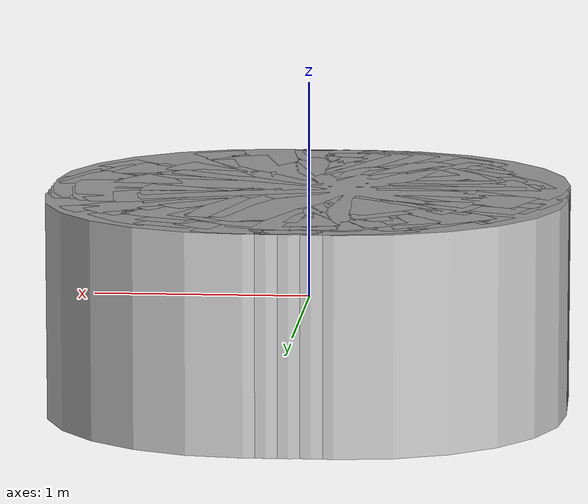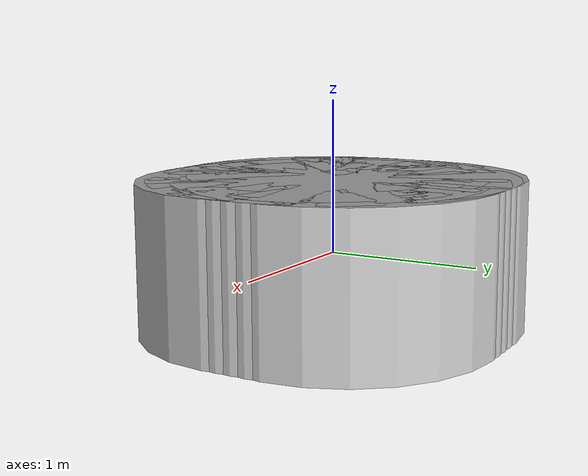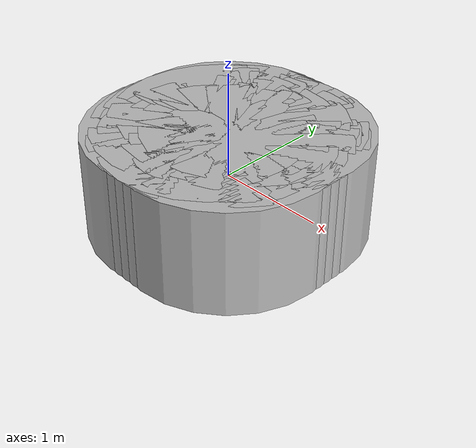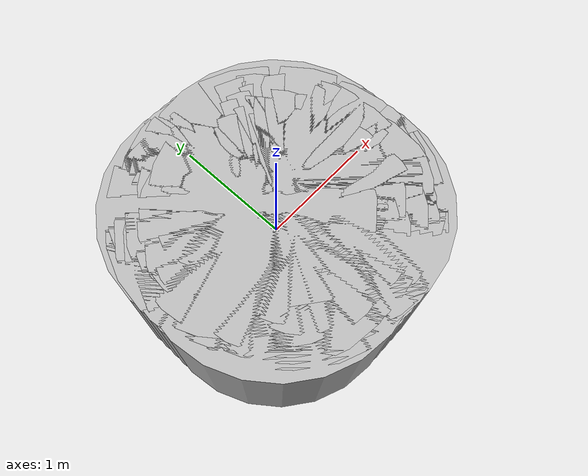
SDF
<sdf version="1.7">
  <model name="mass_mesh_tree">
    <static>false</static>
    <link name="mass_x-2_y-2">
      <pose>-0.2 -0.2 0 0 0 0</pose>
      <inertial>
        <mass>0.004</mass>
        <inertia>
          <ixx>1e-5</ixx>
          <ixy>0</ixy>
          <ixz>0</ixz>
          <iyy>1e-5</iyy>
          <iyz>0</iyz>
          <izz>1e-5</izz>
        </inertia>
      </inertial>
      <collision name="collision_x-2_y-2">
        <geometry>
          <sphere>
            <radius>0.001</radius>
          </sphere>
        </geometry>
      </collision>
      <visual name="visual_x-2_y-2">
        <geometry>
          <cylinder>
            <size>0.015 0.015</size>
          </cylinder>
        </geometry>
      </visual>
    </link>
    <link name="mass_x-1_y-2">
      <pose>-0.1 -0.2 0 0 0 0</pose>
      <inertial>
        <mass>0.004</mass>
        <inertia>
          <ixx>1e-5</ixx>
          <ixy>0</ixy>
          <ixz>0</ixz>
          <iyy>1e-5</iyy>
          <iyz>0</iyz>
          <izz>1e-5</izz>
        </inertia>
      </inertial>
      <collision name="collision_x-1_y-2">
        <geometry>
          <sphere>
            <radius>0.001</radius>
          </sphere>
        </geometry>
      </collision>
      <visual name="visual_x-1_y-2">
        <geometry>
          <cylinder>
            <size>0.015 0.015</size>
          </cylinder>
        </geometry>
      </visual>
    </link>
    <link name="mass_x0_y-2">
      <pose>0.0 -0.2 0 0 0 0</pose>
      <inertial>
        <mass>0.004</mass>
        <inertia>
          <ixx>1e-5</ixx>
          <ixy>0</ixy>
          <ixz>0</ixz>
          <iyy>1e-5</iyy>
          <iyz>0</iyz>
          <izz>1e-5</izz>
        </inertia>
      </inertial>
      <collision name="collision_x0_y-2">
        <geometry>
          <sphere>
            <radius>0.001</radius>
          </sphere>
        </geometry>
      </collision>
      <visual name="visual_x0_y-2">
        <geometry>
          <cylinder>
            <size>0.015 0.015</size>
          </cylinder>
        </geometry>
      </visual>
    </link>
    <link name="mass_x1_y-2">
      <pose>0.1 -0.2 0 0 0 0</pose>
      <inertial>
        <mass>0.004</mass>
        <inertia>
          <ixx>1e-5</ixx>
          <ixy>0</ixy>
          <ixz>0</ixz>
          <iyy>1e-5</iyy>
          <iyz>0</iyz>
          <izz>1e-5</izz>
        </inertia>
      </inertial>
      <collision name="collision_x1_y-2">
        <geometry>
          <sphere>
            <radius>0.001</radius>
          </sphere>
        </geometry>
      </collision>
      <visual name="visual_x1_y-2">
        <geometry>
          <cylinder>
            <size>0.015 0.015</size>
          </cylinder>
        </geometry>
      </visual>
    </link>
    <link name="mass_x2_y-2">
      <pose>0.2 -0.2 0 0 0 0</pose>
      <inertial>
        <mass>0.004</mass>
        <inertia>
          <ixx>1e-5</ixx>
          <ixy>0</ixy>
          <ixz>0</ixz>
          <iyy>1e-5</iyy>
          <iyz>0</iyz>
          <izz>1e-5</izz>
        </inertia>
      </inertial>
      <collision name="collision_x2_y-2">
        <geometry>
          <sphere>
            <radius>0.001</radius>
          </sphere>
        </geometry>
      </collision>
      <visual name="visual_x2_y-2">
        <geometry>
          <cylinder>
            <size>0.015 0.015</size>
          </cylinder>
        </geometry>
      </visual>
    </link>
    <link name="mass_x-2_y-1">
      <pose>-0.2 -0.1 0 0 0 0</pose>
      <inertial>
        <mass>0.004</mass>
        <inertia>
          <ixx>1e-5</ixx>
          <ixy>0</ixy>
          <ixz>0</ixz>
          <iyy>1e-5</iyy>
          <iyz>0</iyz>
          <izz>1e-5</izz>
        </inertia>
      </inertial>
      <collision name="collision_x-2_y-1">
        <geometry>
          <sphere>
            <radius>0.001</radius>
          </sphere>
        </geometry>
      </collision>
      <visual name="visual_x-2_y-1">
        <geometry>
          <cylinder>
            <size>0.015 0.015</size>
          </cylinder>
        </geometry>
      </visual>
    </link>
    <link name="mass_x-1_y-1">
      <pose>-0.1 -0.1 0 0 0 0</pose>
      <inertial>
        <mass>0.004</mass>
        <inertia>
          <ixx>1e-5</ixx>
          <ixy>0</ixy>
          <ixz>0</ixz>
          <iyy>1e-5</iyy>
          <iyz>0</iyz>
          <izz>1e-5</izz>
        </inertia>
      </inertial>
      <collision name="collision_x-1_y-1">
        <geometry>
          <sphere>
            <radius>0.001</radius>
          </sphere>
        </geometry>
      </collision>
      <visual name="visual_x-1_y-1">
        <geometry>
          <cylinder>
            <size>0.015 0.015</size>
          </cylinder>
        </geometry>
      </visual>
    </link>
    <link name="mass_x0_y-1">
      <pose>0.0 -0.1 0 0 0 0</pose>
      <inertial>
        <mass>0.004</mass>
        <inertia>
          <ixx>1e-5</ixx>
          <ixy>0</ixy>
          <ixz>0</ixz>
          <iyy>1e-5</iyy>
          <iyz>0</iyz>
          <izz>1e-5</izz>
        </inertia>
      </inertial>
      <collision name="collision_x0_y-1">
        <geometry>
          <sphere>
            <radius>0.001</radius>
          </sphere>
        </geometry>
      </collision>
      <visual name="visual_x0_y-1">
        <geometry>
          <cylinder>
            <size>0.015 0.015</size>
          </cylinder>
        </geometry>
      </visual>
    </link>
    <link name="mass_x1_y-1">
      <pose>0.1 -0.1 0 0 0 0</pose>
      <inertial>
        <mass>0.004</mass>
        <inertia>
          <ixx>1e-5</ixx>
          <ixy>0</ixy>
          <ixz>0</ixz>
          <iyy>1e-5</iyy>
          <iyz>0</iyz>
          <izz>1e-5</izz>
        </inertia>
      </inertial>
      <collision name="collision_x1_y-1">
        <geometry>
          <sphere>
            <radius>0.001</radius>
          </sphere>
        </geometry>
      </collision>
      <visual name="visual_x1_y-1">
        <geometry>
          <cylinder>
            <size>0.015 0.015</size>
          </cylinder>
        </geometry>
      </visual>
    </link>
    <link name="mass_x2_y-1">
      <pose>0.2 -0.1 0 0 0 0</pose>
      <inertial>
        <mass>0.004</mass>
        <inertia>
          <ixx>1e-5</ixx>
          <ixy>0</ixy>
          <ixz>0</ixz>
          <iyy>1e-5</iyy>
          <iyz>0</iyz>
          <izz>1e-5</izz>
        </inertia>
      </inertial>
      <collision name="collision_x2_y-1">
        <geometry>
          <sphere>
            <radius>0.001</radius>
          </sphere>
        </geometry>
      </collision>
      <visual name="visual_x2_y-1">
        <geometry>
          <cylinder>
            <size>0.015 0.015</size>
          </cylinder>
        </geometry>
      </visual>
    </link>
    <link name="mass_x-2_y0">
      <pose>-0.2 0.0 0 0 0 0</pose>
      <inertial>
        <mass>0.004</mass>
        <inertia>
          <ixx>1e-5</ixx>
          <ixy>0</ixy>
          <ixz>0</ixz>
          <iyy>1e-5</iyy>
          <iyz>0</iyz>
          <izz>1e-5</izz>
        </inertia>
      </inertial>
      <collision name="collision_x-2_y0">
        <geometry>
          <sphere>
            <radius>0.001</radius>
          </sphere>
        </geometry>
      </collision>
      <visual name="visual_x-2_y0">
        <geometry>
          <cylinder>
            <size>0.015 0.015</size>
          </cylinder>
        </geometry>
      </visual>
    </link>
    <link name="mass_x-1_y0">
      <pose>-0.1 0.0 0 0 0 0</pose>
      <inertial>
        <mass>0.004</mass>
        <inertia>
          <ixx>1e-5</ixx>
          <ixy>0</ixy>
          <ixz>0</ixz>
          <iyy>1e-5</iyy>
          <iyz>0</iyz>
          <izz>1e-5</izz>
        </inertia>
      </inertial>
      <collision name="collision_x-1_y0">
        <geometry>
          <sphere>
            <radius>0.001</radius>
          </sphere>
        </geometry>
      </collision>
      <visual name="visual_x-1_y0">
        <geometry>
          <cylinder>
            <size>0.015 0.015</size>
          </cylinder>
        </geometry>
      </visual>
    </link>
    <link name="mass_x0_y0">
      <pose>0.0 0.0 0 0 0 0</pose>
      <inertial>
        <mass>0.004</mass>
        <inertia>
          <ixx>1e-5</ixx>
          <ixy>0</ixy>
          <ixz>0</ixz>
          <iyy>1e-5</iyy>
          <iyz>0</iyz>
          <izz>1e-5</izz>
        </inertia>
      </inertial>
      <collision name="collision_x0_y0">
        <geometry>
          <sphere>
            <radius>0.001</radius>
          </sphere>
        </geometry>
      </collision>
      <visual name="visual_x0_y0">
        <geometry>
          <cylinder>
            <size>0.015 0.015</size>
          </cylinder>
        </geometry>
      </visual>
    </link>
    <link name="mass_x1_y0">
      <pose>0.1 0.0 0 0 0 0</pose>
      <inertial>
        <mass>0.004</mass>
        <inertia>
          <ixx>1e-5</ixx>
          <ixy>0</ixy>
          <ixz>0</ixz>
          <iyy>1e-5</iyy>
          <iyz>0</iyz>
          <izz>1e-5</izz>
        </inertia>
      </inertial>
      <collision name="collision_x1_y0">
        <geometry>
          <sphere>
            <radius>0.001</radius>
          </sphere>
        </geometry>
      </collision>
      <visual name="visual_x1_y0">
        <geometry>
          <cylinder>
            <size>0.015 0.015</size>
          </cylinder>
        </geometry>
      </visual>
    </link>
    <link name="mass_x2_y0">
      <pose>0.2 0.0 0 0 0 0</pose>
      <inertial>
        <mass>0.004</mass>
        <inertia>
          <ixx>1e-5</ixx>
          <ixy>0</ixy>
          <ixz>0</ixz>
          <iyy>1e-5</iyy>
          <iyz>0</iyz>
          <izz>1e-5</izz>
        </inertia>
      </inertial>
      <collision name="collision_x2_y0">
        <geometry>
          <sphere>
            <radius>0.001</radius>
          </sphere>
        </geometry>
      </collision>
      <visual name="visual_x2_y0">
        <geometry>
          <cylinder>
            <size>0.015 0.015</size>
          </cylinder>
        </geometry>
      </visual>
    </link>
    <link name="mass_x-2_y1">
      <pose>-0.2 0.1 0 0 0 0</pose>
      <inertial>
        <mass>0.004</mass>
        <inertia>
          <ixx>1e-5</ixx>
          <ixy>0</ixy>
          <ixz>0</ixz>
          <iyy>1e-5</iyy>
          <iyz>0</iyz>
          <izz>1e-5</izz>
        </inertia>
      </inertial>
      <collision name="collision_x-2_y1">
        <geometry>
          <sphere>
            <radius>0.001</radius>
          </sphere>
        </geometry>
      </collision>
      <visual name="visual_x-2_y1">
        <geometry>
          <cylinder>
            <size>0.015 0.015</size>
          </cylinder>
        </geometry>
      </visual>
    </link>
    <link name="mass_x-1_y1">
      <pose>-0.1 0.1 0 0 0 0</pose>
      <inertial>
        <mass>0.004</mass>
        <inertia>
          <ixx>1e-5</ixx>
          <ixy>0</ixy>
          <ixz>0</ixz>
          <iyy>1e-5</iyy>
          <iyz>0</iyz>
          <izz>1e-5</izz>
        </inertia>
      </inertial>
      <collision name="collision_x-1_y1">
        <geometry>
          <sphere>
            <radius>0.001</radius>
          </sphere>
        </geometry>
      </collision>
      <visual name="visual_x-1_y1">
        <geometry>
          <cylinder>
            <size>0.015 0.015</size>
          </cylinder>
        </geometry>
      </visual>
    </link>
    <link name="mass_x0_y1">
      <pose>0.0 0.1 0 0 0 0</pose>
      <inertial>
        <mass>0.004</mass>
        <inertia>
          <ixx>1e-5</ixx>
          <ixy>0</ixy>
          <ixz>0</ixz>
          <iyy>1e-5</iyy>
          <iyz>0</iyz>
          <izz>1e-5</izz>
        </inertia>
      </inertial>
      <collision name="collision_x0_y1">
        <geometry>
          <sphere>
            <radius>0.001</radius>
          </sphere>
        </geometry>
      </collision>
      <visual name="visual_x0_y1">
        <geometry>
          <cylinder>
            <size>0.015 0.015</size>
          </cylinder>
        </geometry>
      </visual>
    </link>
    <link name="mass_x1_y1">
      <pose>0.1 0.1 0 0 0 0</pose>
      <inertial>
        <mass>0.004</mass>
        <inertia>
          <ixx>1e-5</ixx>
          <ixy>0</ixy>
          <ixz>0</ixz>
          <iyy>1e-5</iyy>
          <iyz>0</iyz>
          <izz>1e-5</izz>
        </inertia>
      </inertial>
      <collision name="collision_x1_y1">
        <geometry>
          <sphere>
            <radius>0.001</radius>
          </sphere>
        </geometry>
      </collision>
      <visual name="visual_x1_y1">
        <geometry>
          <cylinder>
            <size>0.015 0.015</size>
          </cylinder>
        </geometry>
      </visual>
    </link>
    <link name="mass_x2_y1">
      <pose>0.2 0.1 0 0 0 0</pose>
      <inertial>
        <mass>0.004</mass>
        <inertia>
          <ixx>1e-5</ixx>
          <ixy>0</ixy>
          <ixz>0</ixz>
          <iyy>1e-5</iyy>
          <iyz>0</iyz>
          <izz>1e-5</izz>
        </inertia>
      </inertial>
      <collision name="collision_x2_y1">
        <geometry>
          <sphere>
            <radius>0.001</radius>
          </sphere>
        </geometry>
      </collision>
      <visual name="visual_x2_y1">
        <geometry>
          <cylinder>
            <size>0.015 0.015</size>
          </cylinder>
        </geometry>
      </visual>
    </link>
    <link name="mass_x-2_y2">
      <pose>-0.2 0.2 0 0 0 0</pose>
      <inertial>
        <mass>0.004</mass>
        <inertia>
          <ixx>1e-5</ixx>
          <ixy>0</ixy>
          <ixz>0</ixz>
          <iyy>1e-5</iyy>
          <iyz>0</iyz>
          <izz>1e-5</izz>
        </inertia>
      </inertial>
      <collision name="collision_x-2_y2">
        <geometry>
          <sphere>
            <radius>0.001</radius>
          </sphere>
        </geometry>
      </collision>
      <visual name="visual_x-2_y2">
        <geometry>
          <cylinder>
            <size>0.015 0.015</size>
          </cylinder>
        </geometry>
      </visual>
    </link>
    <link name="mass_x-1_y2">
      <pose>-0.1 0.2 0 0 0 0</pose>
      <inertial>
        <mass>0.004</mass>
        <inertia>
          <ixx>1e-5</ixx>
          <ixy>0</ixy>
          <ixz>0</ixz>
          <iyy>1e-5</iyy>
          <iyz>0</iyz>
          <izz>1e-5</izz>
        </inertia>
      </inertial>
      <collision name="collision_x-1_y2">
        <geometry>
          <sphere>
            <radius>0.001</radius>
          </sphere>
        </geometry>
      </collision>
      <visual name="visual_x-1_y2">
        <geometry>
          <cylinder>
            <size>0.015 0.015</size>
          </cylinder>
        </geometry>
      </visual>
    </link>
    <link name="mass_x0_y2">
      <pose>0.0 0.2 0 0 0 0</pose>
      <inertial>
        <mass>0.004</mass>
        <inertia>
          <ixx>1e-5</ixx>
          <ixy>0</ixy>
          <ixz>0</ixz>
          <iyy>1e-5</iyy>
          <iyz>0</iyz>
          <izz>1e-5</izz>
        </inertia>
      </inertial>
      <collision name="collision_x0_y2">
        <geometry>
          <sphere>
            <radius>0.001</radius>
          </sphere>
        </geometry>
      </collision>
      <visual name="visual_x0_y2">
        <geometry>
          <cylinder>
            <size>0.015 0.015</size>
          </cylinder>
        </geometry>
      </visual>
    </link>
    <link name="mass_x1_y2">
      <pose>0.1 0.2 0 0 0 0</pose>
      <inertial>
        <mass>0.004</mass>
        <inertia>
          <ixx>1e-5</ixx>
          <ixy>0</ixy>
          <ixz>0</ixz>
          <iyy>1e-5</iyy>
          <iyz>0</iyz>
          <izz>1e-5</izz>
        </inertia>
      </inertial>
      <collision name="collision_x1_y2">
        <geometry>
          <sphere>
            <radius>0.001</radius>
          </sphere>
        </geometry>
      </collision>
      <visual name="visual_x1_y2">
        <geometry>
          <cylinder>
            <size>0.015 0.015</size>
          </cylinder>
        </geometry>
      </visual>
    </link>
    <link name="mass_x2_y2">
      <pose>0.2 0.2 0 0 0 0</pose>
      <inertial>
        <mass>0.004</mass>
        <inertia>
          <ixx>1e-5</ixx>
          <ixy>0</ixy>
          <ixz>0</ixz>
          <iyy>1e-5</iyy>
          <iyz>0</iyz>
          <izz>1e-5</izz>
        </inertia>
      </inertial>
      <collision name="collision_x2_y2">
        <geometry>
          <sphere>
            <radius>0.001</radius>
          </sphere>
        </geometry>
      </collision>
      <visual name="visual_x2_y2">
        <geometry>
          <cylinder>
            <size>0.015 0.015</size>
          </cylinder>
        </geometry>
      </visual>
    </link>
    <joint name="N_x0_y0_to_x1_y0" type="ball">
      <parent>mass_x0_y0</parent>
      <child>mass_x1_y0</child>
      <pose relative_to="mass_x1_y0">-0.05 0 0 0 0 0</pose>
    </joint>
    <joint name="S_x0_y0_to_x-1_y0" type="ball">
      <parent>mass_x0_y0</parent>
      <child>mass_x-1_y0</child>
      <pose relative_to="mass_x-1_y0">0.05 0 0 0 0 3.141592653589793</pose>
    </joint>
    <joint name="W_x0_y0_to_x0_y1" type="ball">
      <parent>mass_x0_y0</parent>
      <child>mass_x0_y1</child>
      <pose relative_to="mass_x0_y1">0 -0.05 0 0 0 1.5707963267948966</pose>
    </joint>
    <joint name="E_x0_y0_to_x0_y-1" type="ball">
      <parent>mass_x0_y0</parent>
      <child>mass_x0_y-1</child>
      <pose relative_to="mass_x0_y-1">0 0.05 0 0 0 -1.5707963267948966</pose>
    </joint>
    <joint name="N_x1_y0_to_x2_y0" type="ball">
      <parent>mass_x1_y0</parent>
      <child>mass_x2_y0</child>
      <pose relative_to="mass_x2_y0">-0.05 0 0 0 0 0</pose>
    </joint>
    <joint name="S_x-1_y0_to_x-2_y0" type="ball">
      <parent>mass_x-1_y0</parent>
      <child>mass_x-2_y0</child>
      <pose relative_to="mass_x-2_y0">0.05 0 0 0 0 3.141592653589793</pose>
    </joint>
    <joint name="N_x0_y1_to_x1_y1" type="ball">
      <parent>mass_x0_y1</parent>
      <child>mass_x1_y1</child>
      <pose relative_to="mass_x1_y1">-0.05 0 0 0 0 0</pose>
    </joint>
    <joint name="S_x0_y1_to_x-1_y1" type="ball">
      <parent>mass_x0_y1</parent>
      <child>mass_x-1_y1</child>
      <pose relative_to="mass_x-1_y1">0.05 0 0 0 0 3.141592653589793</pose>
    </joint>
    <joint name="N_x0_y-1_to_x1_y-1" type="ball">
      <parent>mass_x0_y-1</parent>
      <child>mass_x1_y-1</child>
      <pose relative_to="mass_x1_y-1">-0.05 0 0 0 0 0</pose>
    </joint>
    <joint name="S_x0_y-1_to_x-1_y-1" type="ball">
      <parent>mass_x0_y-1</parent>
      <child>mass_x-1_y-1</child>
      <pose relative_to="mass_x-1_y-1">0.05 0 0 0 0 3.141592653589793</pose>
    </joint>
    <joint name="W_x0_y1_to_x0_y2" type="ball">
      <parent>mass_x0_y1</parent>
      <child>mass_x0_y2</child>
      <pose relative_to="mass_x0_y2">0 -0.05 0 0 0 1.5707963267948966</pose>
    </joint>
    <joint name="E_x0_y-1_to_x0_y-2" type="ball">
      <parent>mass_x0_y-1</parent>
      <child>mass_x0_y-2</child>
      <pose relative_to="mass_x0_y-2">0 0.05 0 0 0 -1.5707963267948966</pose>
    </joint>
    <joint name="N_x1_y1_to_x2_y1" type="ball">
      <parent>mass_x1_y1</parent>
      <child>mass_x2_y1</child>
      <pose relative_to="mass_x2_y1">-0.05 0 0 0 0 0</pose>
    </joint>
    <joint name="S_x-1_y1_to_x-2_y1" type="ball">
      <parent>mass_x-1_y1</parent>
      <child>mass_x-2_y1</child>
      <pose relative_to="mass_x-2_y1">0.05 0 0 0 0 3.141592653589793</pose>
    </joint>
    <joint name="N_x1_y-1_to_x2_y-1" type="ball">
      <parent>mass_x1_y-1</parent>
      <child>mass_x2_y-1</child>
      <pose relative_to="mass_x2_y-1">-0.05 0 0 0 0 0</pose>
    </joint>
    <joint name="S_x-1_y-1_to_x-2_y-1" type="ball">
      <parent>mass_x-1_y-1</parent>
      <child>mass_x-2_y-1</child>
      <pose relative_to="mass_x-2_y-1">0.05 0 0 0 0 3.141592653589793</pose>
    </joint>
    <joint name="N_x0_y2_to_x1_y2" type="ball">
      <parent>mass_x0_y2</parent>
      <child>mass_x1_y2</child>
      <pose relative_to="mass_x1_y2">-0.05 0 0 0 0 0</pose>
    </joint>
    <joint name="S_x0_y2_to_x-1_y2" type="ball">
      <parent>mass_x0_y2</parent>
      <child>mass_x-1_y2</child>
      <pose relative_to="mass_x-1_y2">0.05 0 0 0 0 3.141592653589793</pose>
    </joint>
    <joint name="N_x0_y-2_to_x1_y-2" type="ball">
      <parent>mass_x0_y-2</parent>
      <child>mass_x1_y-2</child>
      <pose relative_to="mass_x1_y-2">-0.05 0 0 0 0 0</pose>
    </joint>
    <joint name="S_x0_y-2_to_x-1_y-2" type="ball">
      <parent>mass_x0_y-2</parent>
      <child>mass_x-1_y-2</child>
      <pose relative_to="mass_x-1_y-2">0.05 0 0 0 0 3.141592653589793</pose>
    </joint>
    <joint name="N_x1_y2_to_x2_y2" type="ball">
      <parent>mass_x1_y2</parent>
      <child>mass_x2_y2</child>
      <pose relative_to="mass_x2_y2">-0.05 0 0 0 0 0</pose>
    </joint>
    <joint name="S_x-1_y2_to_x-2_y2" type="ball">
      <parent>mass_x-1_y2</parent>
      <child>mass_x-2_y2</child>
      <pose relative_to="mass_x-2_y2">0.05 0 0 0 0 3.141592653589793</pose>
    </joint>
    <joint name="N_x1_y-2_to_x2_y-2" type="ball">
      <parent>mass_x1_y-2</parent>
      <child>mass_x2_y-2</child>
      <pose relative_to="mass_x2_y-2">-0.05 0 0 0 0 0</pose>
    </joint>
    <joint name="S_x-1_y-2_to_x-2_y-2" type="ball">
      <parent>mass_x-1_y-2</parent>
      <child>mass_x-2_y-2</child>
      <pose relative_to="mass_x-2_y-2">0.05 0 0 0 0 3.141592653589793</pose>
    </joint>
  </model>
</sdf>
